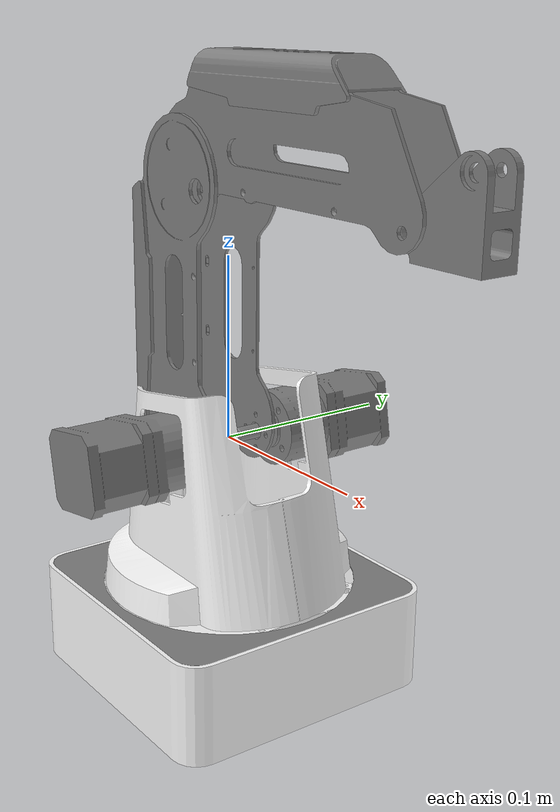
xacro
<?xml version="1.0" encoding="utf-8"?>
<robot
  name="magician" xmlns:xacro="http://www.ros.org/wiki/xacro">

  <xacro:include filename="$(find magician_description)/urdf/magician.gazebo" />

  <xacro:include filename="$(find magician_description)/urdf/magician_transmission.xacro" />

  <link name="world"/>
  <link name="magician_origin"/>
  <joint
    name="world_joint"
    type="fixed">
    <origin
      xyz="0 0 0"
      rpy="0 0 0" />
    <parent
      link="world" />
    <child
      link="magician_origin" />
    <axis
      xyz="0 0 0" />
  </joint>
  <link
    name="magician_base">
    <inertial>
      <origin
        xyz="-0.00035432 -0.00080566 0.023187"
        rpy="0 0 0" />
      <mass
        value="0.23009" />
      <inertia
        ixx="0.00065784"
        ixy="-4.8312E-06"
        ixz="1.2493E-06"
        iyy="0.00069673"
        iyz="4.3823E-07"
        izz="0.0012945" />
    </inertial>
    <visual>
      <origin
        xyz="0 0 0"
        rpy="0 0 0" />
      <geometry>
        <mesh
          filename="package://magician_description/meshes/magician_base.STL" />
      </geometry>
      <material
        name="">
        <color
          rgba="1 1 1 1" />
      </material>
    </visual>
    <collision>
      <origin
        xyz="0 0 0"
        rpy="0 0 0" />
      <geometry>
        <mesh
          filename="package://magician_description/meshes/magician_base.STL" />
      </geometry>
    </collision>
  </link>
  <joint
    name="magician_origin_joint1"
    type="fixed">
    <origin
      xyz="0 0 -0.139"
      rpy="0 0 1.5707963267948966" />
    <parent
      link="magician_origin" />
    <child
      link="magician_base" />
    <axis
      xyz="0 0 0" />
  </joint>
  <link
    name="magician_link1">
    <inertial>
      <origin
        xyz="0.00024809 -0.00074864 0.040762"
        rpy="0 0 0" />
      <mass
        value="0.081469" />
      <inertia
        ixx="0.00020859"
        ixy="8.163E-08"
        ixz="4.6298E-07"
        iyy="9.5838E-05"
        iyz="3.2246E-06"
        izz="0.00015246" />
    </inertial>
    <visual>
      <origin
        xyz="0 0 0"
        rpy="0 0 0" />
      <geometry>
        <mesh
          filename="package://magician_description/meshes/magician_link1.STL" />
      </geometry>
      <material
        name="">
        <color
          rgba="1 1 1 1" />
      </material>
    </visual>
    <collision>
      <origin
        xyz="0 0 0"
        rpy="0 0 0" />
      <geometry>
        <mesh
          filename="package://magician_description/meshes/magician_link1.STL" />
      </geometry>
    </collision>
  </link>
  <joint
    name="magician_joint1"
    type="revolute">
    <origin
      xyz="0 0 0.0569"
      rpy="0 0 0" />
    <parent
      link="magician_base" />
    <child
      link="magician_link1" />
    <axis
      xyz="0 0 1" />
    <limit
      lower="-2.1816"
      upper="2.1816"
      effort="20"
      velocity="1.57" />
  </joint>
  <link
    name="magician_link2">
    <inertial>
      <origin
        xyz="-0.076276 0.029436 2.1815E-06"
        rpy="0 0 0" />
      <mass
        value="0.047726" />
      <inertia
        ixx="3.5818E-05"
        ixy="-4.4023E-06"
        ixz="-7.1903E-09"
        iyy="0.00014556"
        iyz="2.3353E-09"
        izz="0.00015167" />
    </inertial>
    <visual>
      <origin
        xyz="0 0 0"
        rpy="0 0 0" />
      <geometry>
        <mesh
          filename="package://magician_description/meshes/magician_link2.STL" />
      </geometry>
      <material
        name="">
        <color
          rgba="0.501960784313725 0.501960784313725 0.501960784313725 1" />
      </material>
    </visual>
    <collision>
      <origin
        xyz="0 0 0"
        rpy="0 0 0" />
      <geometry>
        <mesh
          filename="package://magician_description/meshes/magician_link2.STL" />
      </geometry>
    </collision>
  </link>
  <joint
    name="magician_joint2"
    type="revolute">
    <origin
      xyz="0 0 0.0821"
      rpy="0 1.5707963267948966 0" />
    <parent
      link="magician_link1" />
    <child
      link="magician_link2" />
    <axis
      xyz="0 0 1" />
    <limit
      lower="-0.0872"
      upper="1.5707"
      effort="20"
      velocity="1.57" />
  </joint>
  <link
    name="magician_link3">
    <inertial>
      <origin
        xyz="0.029209 -0.054163 -8.4342E-05"
        rpy="0 0 0" />
      <mass
        value="0.042983" />
      <inertia
        ixx="0.00013733"
        ixy="-9.7605E-08"
        ixz="-1.1091E-07"
        iyy="2.3432E-05"
        iyz="3.5599E-07"
        izz="0.00014558" />
    </inertial>
    <visual>
      <origin
        xyz="0 0 0"
        rpy="0 0 0" />
      <geometry>
        <mesh
          filename="package://magician_description/meshes/magician_link3.STL" />
      </geometry>
      <material
        name="">
        <color
          rgba="0.501960784313725 0.501960784313725 0.501960784313725 1" />
      </material>
    </visual>
    <collision>
      <origin
        xyz="0 0 0"
        rpy="0 0 0" />
      <geometry>
        <mesh
          filename="package://magician_description/meshes/magician_link3.STL" />
      </geometry>
    </collision>
  </link>
  <joint
    name="magician_fake_joint1"
    type="revolute">
    <origin
      xyz="0 -0.147 0"
      rpy="3.1415926535897932 0 1.5707963267948966" />
    <parent
      link="magician_link3" />
    <child
      link="magician_fake_link" />
    <axis
      xyz="0 0 1" />
    <limit
      lower="-1.5707"
      upper="0.08726"
      effort="20"
      velocity="1.57" />
    <mimic
      joint="magician_joint2"
      multiplier="-1"
      offset="0"/>
  </joint>
  <link name="magician_fake_link">
    <inertial>
      <origin
        xyz="0 0 0"
        rpy="0 0 0" />
      <mass
        value="0.025" />
      <inertia
        ixx="1E-5"
        ixy="0"
        ixz="0"
        iyy="1E-5"
        iyz="0"
        izz="1E-5" />
    </inertial>
  </link>
  <joint
    name="magician_joint3"
    type="revolute">
    <origin
      xyz="-0.135 0 0"
      rpy="-3.1415926535897932 0 -3.1415926535897932" />
    <parent
      link="magician_link2" />
    <child
      link="magician_link3" />
    <axis
      xyz="0 0 -1" />
    <limit
      lower="-0.2617"
      upper="1.5707"
      effort="20"
      velocity="1.57" />
  </joint>
  <link
    name="magician_link4">
    <inertial>
      <origin
        xyz="-0.019694 0.0034659 0.0001155"
        rpy="0 0 0" />
      <mass
        value="0.020564" />
      <inertia
        ixx="3.7203E-06"
        ixy="7.6009E-07"
        ixz="3.146E-08"
        iyy="4.5639E-06"
        iyz="-5.7432E-08"
        izz="6.427E-06" />
    </inertial>
    <visual>
      <origin
        xyz="0 0 0"
        rpy="0 0 0" />
      <geometry>
        <mesh
          filename="package://magician_description/meshes/magician_link4.STL" />
      </geometry>
      <material
        name="">
        <color
          rgba="0.501960784313725 0.501960784313725 0.501960784313725 1" />
      </material>
    </visual>
    <collision>
      <origin
        xyz="0 0 0"
        rpy="0 0 0" />
      <geometry>
        <mesh
          filename="package://magician_description/meshes/magician_link4.STL" />
      </geometry>
    </collision>
  </link>
  <joint
    name="magician_fake_joint2"
    type="revolute">
    <origin
      xyz="0 0 0"
      rpy="0 0 0" />
    <parent
      link="magician_fake_link" />
    <child
      link="magician_link4" />
    <axis
      xyz="0 0 1" />
    <limit
      lower="-1.5707"
      upper="0.2617"
      effort="20"
      velocity="1.57" />
    <mimic
      joint="magician_joint3"
      multiplier="-1"
      offset="0"/>
  </joint>
  <link
    name="magician_link3_surface">
    <inertial>
      <origin
        xyz="0.059385 -0.050176 -2.6308E-06"
        rpy="0 0 0" />
      <mass
        value="0.015005" />
      <inertia
        ixx="1.8842E-05"
        ixy="-3.9211E-07"
        ixz="4.9615E-10"
        iyy="3.6097E-06"
        iyz="-1.2797E-09"
        izz="1.6901E-05" />
    </inertial>
    <visual>
      <origin
        xyz="0 0 0"
        rpy="0 0 0" />
      <geometry>
        <mesh
          filename="package://magician_description/meshes/magician_link3_surface.STL" />
      </geometry>
      <material
        name="">
        <color
          rgba="0.501960784313725 0.501960784313725 0.501960784313725 1" />
      </material>
    </visual>
    <collision>
      <origin
        xyz="0 0 0"
        rpy="0 0 0" />
      <geometry>
        <mesh
          filename="package://magician_description/meshes/magician_link3_surface.STL" />
      </geometry>
    </collision>
  </link>
  <joint
    name="magician_link3_joint1"
    type="fixed">
    <origin
      xyz="0 0 0"
      rpy="0 0 0" />
    <parent
      link="magician_link3" />
    <child
      link="magician_link3_surface" />
    <axis
      xyz="0 0 0" />
  </joint>
  <link
    name="magician_link2_surface">
    <inertial>
      <origin
        xyz="-0.066726 0.060698 5.5359E-07"
        rpy="0 0 0" />
      <mass
        value="0.018846" />
      <inertia
        ixx="5.9574E-06"
        ixy="-5.1053E-08"
        ixz="3.3782E-09"
        iyy="2.8034E-05"
        iyz="-1.6336E-11"
        izz="2.3816E-05" />
    </inertial>
    <visual>
      <origin
        xyz="0 0 0"
        rpy="0 0 0" />
      <geometry>
        <mesh
          filename="package://magician_description/meshes/magician_link2_surface.STL" />
      </geometry>
      <material
        name="">
        <color
          rgba="0.501960784313725 0.501960784313725 0.501960784313725 1" />
      </material>
    </visual>
    <collision>
      <origin
        xyz="0 0 0"
        rpy="0 0 0" />
      <geometry>
        <mesh
          filename="package://magician_description/meshes/magician_link2_surface.STL" />
      </geometry>
    </collision>
  </link>
  <joint
    name="magician_link2_joint1"
    type="fixed">
    <origin
      xyz="0 0 0"
      rpy="0 0 0" />
    <parent
      link="magician_link2" />
    <child
      link="magician_link2_surface" />
    <axis
      xyz="0 0 0" />
  </joint>
  <link
    name="magician_servos">
    <inertial>
      <origin
        xyz="-3.3282E-06 0 0.0821"
        rpy="0 0 0" />
      <mass
        value="0.21777" />
      <inertia
        ixx="5.4372E-05"
        ixy="-1.467E-18"
        ixz="-1.6192E-19"
        iyy="0.00011754"
        iyz="7.4188E-21"
        izz="0.00011754" />
    </inertial>
    <visual>
      <origin
        xyz="0 0 0"
        rpy="0 0 0" />
      <geometry>
        <mesh
          filename="package://magician_description/meshes/magician_servos.STL" />
      </geometry>
      <material
        name="">
        <color
          rgba="0.501960784313725 0.501960784313725 0.501960784313725 1" />
      </material>
    </visual>
    <collision>
      <origin
        xyz="0 0 0"
        rpy="0 0 0" />
      <geometry>
        <mesh
          filename="package://magician_description/meshes/magician_servos.STL" />
      </geometry>
    </collision>
  </link>
  <joint
    name="magician_link1_joint1"
    type="fixed">
    <origin
      xyz="0 0 0"
      rpy="0 0 0" />
    <parent
      link="magician_link1" />
    <child
      link="magician_servos" />
    <axis
      xyz="0 0 0" />
  </joint>
  <link
    name="magician_base_surface">
    <inertial>
      <origin
        xyz="0 0 0"
        rpy="0 0 0" />
      <mass
        value="0" />
      <inertia
        ixx="0"
        ixy="0"
        ixz="0"
        iyy="0"
        iyz="0"
        izz="0" />
    </inertial>
    <visual>
      <origin
        xyz="0 0 0"
        rpy="0 0 0" />
      <geometry>
        <mesh
          filename="package://magician_description/meshes/magician_base_surface.STL" />
      </geometry>
      <material
        name="">
        <color
          rgba="0.501960784313725 0.501960784313725 0.501960784313725 1" />
      </material>
    </visual>
    <collision>
      <origin
        xyz="0 0 0"
        rpy="0 0 0" />
      <geometry>
        <mesh
          filename="package://magician_description/meshes/magician_base_surface.STL" />
      </geometry>
    </collision>
  </link>
  <joint
    name="magician_base_joint1"
    type="fixed">
    <origin
      xyz="0 0 0"
      rpy="0 0 0" />
    <parent
      link="magician_base" />
    <child
      link="magician_base_surface" />
    <axis
      xyz="0 0 0" />
  </joint>
  <link name="magician_end_link"/>
  <joint
    name="magician_link4_joint1"
    type="fixed">
    <origin
      xyz="0 0 0"
      rpy="-1.5707963267948966 3.1415926535897932 0" />
    <parent
      link="magician_link4" />
    <child
      link="magician_end_link" />
    <axis
      xyz="0 0 0" />
  </joint>
  <link name="magician_end_effctor"/>
  <joint
    name="magician_end_link_joint1"
    type="fixed">
    <origin
      xyz="0.05 0 0"
      rpy="0 0 0" />
    <parent
      link="magician_end_link" />
    <child
      link="magician_end_effctor" />
    <axis
      xyz="0 0 0" />
  </joint>
</robot>
